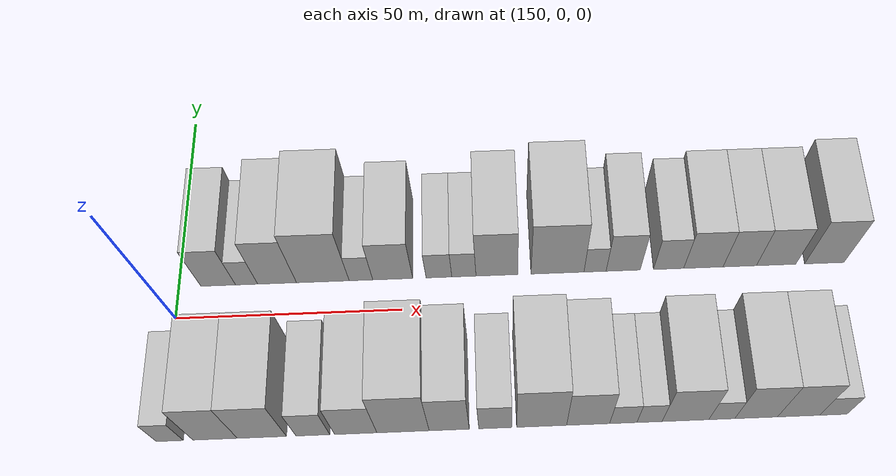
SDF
<sdf version="1.6">
 <world name="default">
  <model name="building_17">
   <static>1</static>
   <pose>158.8195 17.5000 0 0.000000 0.000000 1.570796</pose>
   <link name="link">
    <pose>0 0 9.00 0 0 0</pose>
    <collision name="collision"><geometry><box><size>20.0000 7.7421 18.0000</size></box></geometry></collision>
    <visual name="visual">
     <cast_shadows>0</cast_shadows>
     <geometry><box><size>20.0000 7.7421 18.0000</size></box></geometry>
     <material>
      <script>
       <uri>model://HANNAS_wall/materials/scripts</uri>
       <uri>model://HANNAS_wall/materials/textures</uri>
       <name>vrc/HANNAS_wall</name>
      </script>
     </material>
    </visual>
   </link>
  </model>
  <model name="building_18">
   <static>1</static>
   <pose>165.1507 17.5000 0 0.000000 0.000000 1.570796</pose>
   <link name="link">
    <pose>0 0 6.00 0 0 0</pose>
    <collision name="collision"><geometry><box><size>20.0000 4.9204 12.0000</size></box></geometry></collision>
    <visual name="visual">
     <cast_shadows>0</cast_shadows>
     <geometry><box><size>20.0000 4.9204 12.0000</size></box></geometry>
     <material>
      <script>
       <uri>model://HANNAS_wall/materials/scripts</uri>
       <uri>model://HANNAS_wall/materials/textures</uri>
       <name>vrc/HANNAS_wall</name>
      </script>
     </material>
    </visual>
   </link>
  </model>
  <model name="building_19">
   <static>1</static>
   <pose>171.9484 17.5000 0 0.000000 0.000000 1.570796</pose>
   <link name="link">
    <pose>0 0 10.50 0 0 0</pose>
    <collision name="collision"><geometry><box><size>20.0000 8.6751 21.0000</size></box></geometry></collision>
    <visual name="visual">
     <cast_shadows>0</cast_shadows>
     <geometry><box><size>20.0000 8.6751 21.0000</size></box></geometry>
     <material>
      <script>
       <uri>model://HANNAS_wall/materials/scripts</uri>
       <uri>model://HANNAS_wall/materials/textures</uri>
       <name>vrc/HANNAS_wall</name>
      </script>
     </material>
    </visual>
   </link>
  </model>
  <model name="building_20">
   <static>1</static>
   <pose>182.1808 17.5000 0 0.000000 0.000000 1.570796</pose>
   <link name="link">
    <pose>0 0 12.00 0 0 0</pose>
    <collision name="collision"><geometry><box><size>20.0000 11.7897 24.0000</size></box></geometry></collision>
    <visual name="visual">
     <cast_shadows>0</cast_shadows>
     <geometry><box><size>20.0000 11.7897 24.0000</size></box></geometry>
     <material>
      <script>
       <uri>model://HANNAS_wall/materials/scripts</uri>
       <uri>model://HANNAS_wall/materials/textures</uri>
       <name>vrc/HANNAS_wall</name>
      </script>
     </material>
    </visual>
   </link>
  </model>
  <model name="building_21">
   <static>1</static>
   <pose>190.7075 17.5000 0 0.000000 0.000000 1.570796</pose>
   <link name="link">
    <pose>0 0 6.00 0 0 0</pose>
    <collision name="collision"><geometry><box><size>20.0000 5.2637 12.0000</size></box></geometry></collision>
    <visual name="visual">
     <cast_shadows>0</cast_shadows>
     <geometry><box><size>20.0000 5.2637 12.0000</size></box></geometry>
     <material>
      <script>
       <uri>model://HANNAS_wall/materials/scripts</uri>
       <uri>model://HANNAS_wall/materials/textures</uri>
       <name>vrc/HANNAS_wall</name>
      </script>
     </material>
    </visual>
   </link>
  </model>
  <model name="building_22">
   <static>1</static>
   <pose>197.8259 17.5000 0 0.000000 0.000000 1.570796</pose>
   <link name="link">
    <pose>0 0 9.00 0 0 0</pose>
    <collision name="collision"><geometry><box><size>20.0000 8.9731 18.0000</size></box></geometry></collision>
    <visual name="visual">
     <cast_shadows>0</cast_shadows>
     <geometry><box><size>20.0000 8.9731 18.0000</size></box></geometry>
     <material>
      <script>
       <uri>model://HANNAS_wall/materials/scripts</uri>
       <uri>model://HANNAS_wall/materials/textures</uri>
       <name>vrc/HANNAS_wall</name>
      </script>
     </material>
    </visual>
   </link>
  </model>
  <model name="building_23">
   <static>1</static>
   <pose>208.1990 17.5000 0 0.000000 0.000000 1.570796</pose>
   <link name="link">
    <pose>0 0 6.00 0 0 0</pose>
    <collision name="collision"><geometry><box><size>20.0000 5.7732 12.0000</size></box></geometry></collision>
    <visual name="visual">
     <cast_shadows>0</cast_shadows>
     <geometry><box><size>20.0000 5.7732 12.0000</size></box></geometry>
     <material>
      <script>
       <uri>model://HANNAS_wall/materials/scripts</uri>
       <uri>model://HANNAS_wall/materials/textures</uri>
       <name>vrc/HANNAS_wall</name>
      </script>
     </material>
    </visual>
   </link>
  </model>
  <model name="building_24">
   <static>1</static>
   <pose>213.7987 17.5000 0 0.000000 0.000000 1.570796</pose>
   <link name="link">
    <pose>0 0 6.00 0 0 0</pose>
    <collision name="collision"><geometry><box><size>20.0000 5.4261 12.0000</size></box></geometry></collision>
    <visual name="visual">
     <cast_shadows>0</cast_shadows>
     <geometry><box><size>20.0000 5.4261 12.0000</size></box></geometry>
     <material>
      <script>
       <uri>model://HANNAS_wall/materials/scripts</uri>
       <uri>model://HANNAS_wall/materials/textures</uri>
       <name>vrc/HANNAS_wall</name>
      </script>
     </material>
    </visual>
   </link>
  </model>
  <model name="building_25">
   <static>1</static>
   <pose>221.1981 17.5000 0 0.000000 0.000000 1.570796</pose>
   <link name="link">
    <pose>0 0 10.50 0 0 0</pose>
    <collision name="collision"><geometry><box><size>20.0000 9.3727 21.0000</size></box></geometry></collision>
    <visual name="visual">
     <cast_shadows>0</cast_shadows>
     <geometry><box><size>20.0000 9.3727 21.0000</size></box></geometry>
     <material>
      <script>
       <uri>model://HANNAS_wall/materials/scripts</uri>
       <uri>model://HANNAS_wall/materials/textures</uri>
       <name>vrc/HANNAS_wall</name>
      </script>
     </material>
    </visual>
   </link>
  </model>
  <model name="building_26">
   <static>1</static>
   <pose>234.8552 17.5000 0 0.000000 0.000000 1.570796</pose>
   <link name="link">
    <pose>0 0 12.00 0 0 0</pose>
    <collision name="collision"><geometry><box><size>20.0000 11.9416 24.0000</size></box></geometry></collision>
    <visual name="visual">
     <cast_shadows>0</cast_shadows>
     <geometry><box><size>20.0000 11.9416 24.0000</size></box></geometry>
     <material>
      <script>
       <uri>model://HANNAS_wall/materials/scripts</uri>
       <uri>model://HANNAS_wall/materials/textures</uri>
       <name>vrc/HANNAS_wall</name>
      </script>
     </material>
    </visual>
   </link>
  </model>
  <model name="building_27">
   <static>1</static>
   <pose>243.3277 17.5000 0 0.000000 0.000000 1.570796</pose>
   <link name="link">
    <pose>0 0 6.00 0 0 0</pose>
    <collision name="collision"><geometry><box><size>20.0000 5.0033 12.0000</size></box></geometry></collision>
    <visual name="visual">
     <cast_shadows>0</cast_shadows>
     <geometry><box><size>20.0000 5.0033 12.0000</size></box></geometry>
     <material>
      <script>
       <uri>model://HANNAS_wall/materials/scripts</uri>
       <uri>model://HANNAS_wall/materials/textures</uri>
       <name>vrc/HANNAS_wall</name>
      </script>
     </material>
    </visual>
   </link>
  </model>
  <model name="building_28">
   <static>1</static>
   <pose>249.6791 17.5000 0 0.000000 0.000000 1.570796</pose>
   <link name="link">
    <pose>0 0 9.00 0 0 0</pose>
    <collision name="collision"><geometry><box><size>20.0000 7.6994 18.0000</size></box></geometry></collision>
    <visual name="visual">
     <cast_shadows>0</cast_shadows>
     <geometry><box><size>20.0000 7.6994 18.0000</size></box></geometry>
     <material>
      <script>
       <uri>model://HANNAS_wall/materials/scripts</uri>
       <uri>model://HANNAS_wall/materials/textures</uri>
       <name>vrc/HANNAS_wall</name>
      </script>
     </material>
    </visual>
   </link>
  </model>
  <model name="building_29">
   <static>1</static>
   <pose>259.9456 17.5000 0 0.000000 0.000000 1.570796</pose>
   <link name="link">
    <pose>0 0 7.50 0 0 0</pose>
    <collision name="collision"><geometry><box><size>20.0000 6.8336 15.0000</size></box></geometry></collision>
    <visual name="visual">
     <cast_shadows>0</cast_shadows>
     <geometry><box><size>20.0000 6.8336 15.0000</size></box></geometry>
     <material>
      <script>
       <uri>model://HANNAS_wall/materials/scripts</uri>
       <uri>model://HANNAS_wall/materials/textures</uri>
       <name>vrc/HANNAS_wall</name>
      </script>
     </material>
    </visual>
   </link>
  </model>
  <model name="building_30">
   <static>1</static>
   <pose>267.8288 17.5000 0 0.000000 0.000000 1.570796</pose>
   <link name="link">
    <pose>0 0 9.00 0 0 0</pose>
    <collision name="collision"><geometry><box><size>20.0000 8.9329 18.0000</size></box></geometry></collision>
    <visual name="visual">
     <cast_shadows>0</cast_shadows>
     <geometry><box><size>20.0000 8.9329 18.0000</size></box></geometry>
     <material>
      <script>
       <uri>model://HANNAS_wall/materials/scripts</uri>
       <uri>model://HANNAS_wall/materials/textures</uri>
       <name>vrc/HANNAS_wall</name>
      </script>
     </material>
    </visual>
   </link>
  </model>
  <model name="building_31">
   <static>1</static>
   <pose>276.0815 17.5000 0 0.000000 0.000000 1.570796</pose>
   <link name="link">
    <pose>0 0 9.00 0 0 0</pose>
    <collision name="collision"><geometry><box><size>20.0000 7.5723 18.0000</size></box></geometry></collision>
    <visual name="visual">
     <cast_shadows>0</cast_shadows>
     <geometry><box><size>20.0000 7.5723 18.0000</size></box></geometry>
     <material>
      <script>
       <uri>model://HANNAS_wall/materials/scripts</uri>
       <uri>model://HANNAS_wall/materials/textures</uri>
       <name>vrc/HANNAS_wall</name>
      </script>
     </material>
    </visual>
   </link>
  </model>
  <model name="building_32">
   <static>1</static>
   <pose>284.3451 17.5000 0 0.000000 0.000000 1.570796</pose>
   <link name="link">
    <pose>0 0 9.00 0 0 0</pose>
    <collision name="collision"><geometry><box><size>20.0000 8.9550 18.0000</size></box></geometry></collision>
    <visual name="visual">
     <cast_shadows>0</cast_shadows>
     <geometry><box><size>20.0000 8.9550 18.0000</size></box></geometry>
     <material>
      <script>
       <uri>model://HANNAS_wall/materials/scripts</uri>
       <uri>model://HANNAS_wall/materials/textures</uri>
       <name>vrc/HANNAS_wall</name>
      </script>
     </material>
    </visual>
   </link>
  </model>
  <model name="building_33">
   <static>1</static>
   <pose>295.3060 17.5000 0 0.000000 0.000000 1.570796</pose>
   <link name="link">
    <pose>0 0 10.50 0 0 0</pose>
    <collision name="collision"><geometry><box><size>20.0000 8.9669 21.0000</size></box></geometry></collision>
    <visual name="visual">
     <cast_shadows>0</cast_shadows>
     <geometry><box><size>20.0000 8.9669 21.0000</size></box></geometry>
     <material>
      <script>
       <uri>model://HANNAS_wall/materials/scripts</uri>
       <uri>model://HANNAS_wall/materials/textures</uri>
       <name>vrc/HANNAS_wall</name>
      </script>
     </material>
    </visual>
   </link>
  </model>
  <model name="building_49">
   <static>1</static>
   <pose>151.4752 -17.5000 0 0.000000 0.000000 1.570796</pose>
   <link name="link">
    <pose>0 0 6.00 0 0 0</pose>
    <collision name="collision"><geometry><box><size>20.0000 5.6094 12.0000</size></box></geometry></collision>
    <visual name="visual">
     <cast_shadows>0</cast_shadows>
     <geometry><box><size>20.0000 5.6094 12.0000</size></box></geometry>
     <material>
      <script>
       <uri>model://HANNAS_wall/materials/scripts</uri>
       <uri>model://HANNAS_wall/materials/textures</uri>
       <name>vrc/HANNAS_wall</name>
      </script>
     </material>
    </visual>
   </link>
  </model>
  <model name="building_50">
   <static>1</static>
   <pose>160.9302 -17.5000 0 0.000000 0.000000 1.570796</pose>
   <link name="link">
    <pose>0 0 10.50 0 0 0</pose>
    <collision name="collision"><geometry><box><size>20.0000 9.3006 21.0000</size></box></geometry></collision>
    <visual name="visual">
     <cast_shadows>0</cast_shadows>
     <geometry><box><size>20.0000 9.3006 21.0000</size></box></geometry>
     <material>
      <script>
       <uri>model://HANNAS_wall/materials/scripts</uri>
       <uri>model://HANNAS_wall/materials/textures</uri>
       <name>vrc/HANNAS_wall</name>
      </script>
     </material>
    </visual>
   </link>
  </model>
  <model name="building_51">
   <static>1</static>
   <pose>170.7071 -17.5000 0 0.000000 0.000000 1.570796</pose>
   <link name="link">
    <pose>0 0 10.50 0 0 0</pose>
    <collision name="collision"><geometry><box><size>20.0000 10.2532 21.0000</size></box></geometry></collision>
    <visual name="visual">
     <cast_shadows>0</cast_shadows>
     <geometry><box><size>20.0000 10.2532 21.0000</size></box></geometry>
     <material>
      <script>
       <uri>model://HANNAS_wall/materials/scripts</uri>
       <uri>model://HANNAS_wall/materials/textures</uri>
       <name>vrc/HANNAS_wall</name>
      </script>
     </material>
    </visual>
   </link>
  </model>
  <model name="building_52">
   <static>1</static>
   <pose>181.3683 -17.5000 0 0.000000 0.000000 1.570796</pose>
   <link name="link">
    <pose>0 0 7.50 0 0 0</pose>
    <collision name="collision"><geometry><box><size>20.0000 7.0693 15.0000</size></box></geometry></collision>
    <visual name="visual">
     <cast_shadows>0</cast_shadows>
     <geometry><box><size>20.0000 7.0693 15.0000</size></box></geometry>
     <material>
      <script>
       <uri>model://HANNAS_wall/materials/scripts</uri>
       <uri>model://HANNAS_wall/materials/textures</uri>
       <name>vrc/HANNAS_wall</name>
      </script>
     </material>
    </visual>
   </link>
  </model>
  <model name="building_53">
   <static>1</static>
   <pose>190.3363 -17.5000 0 0.000000 0.000000 1.570796</pose>
   <link name="link">
    <pose>0 0 9.00 0 0 0</pose>
    <collision name="collision"><geometry><box><size>20.0000 8.8667 18.0000</size></box></geometry></collision>
    <visual name="visual">
     <cast_shadows>0</cast_shadows>
     <geometry><box><size>20.0000 8.8667 18.0000</size></box></geometry>
     <material>
      <script>
       <uri>model://HANNAS_wall/materials/scripts</uri>
       <uri>model://HANNAS_wall/materials/textures</uri>
       <name>vrc/HANNAS_wall</name>
      </script>
     </material>
    </visual>
   </link>
  </model>
  <model name="building_54">
   <static>1</static>
   <pose>200.2570 -17.5000 0 0.000000 0.000000 1.570796</pose>
   <link name="link">
    <pose>0 0 12.00 0 0 0</pose>
    <collision name="collision"><geometry><box><size>20.0000 10.9747 24.0000</size></box></geometry></collision>
    <visual name="visual">
     <cast_shadows>0</cast_shadows>
     <geometry><box><size>20.0000 10.9747 24.0000</size></box></geometry>
     <material>
      <script>
       <uri>model://HANNAS_wall/materials/scripts</uri>
       <uri>model://HANNAS_wall/materials/textures</uri>
       <name>vrc/HANNAS_wall</name>
      </script>
     </material>
    </visual>
   </link>
  </model>
  <model name="building_55">
   <static>1</static>
   <pose>209.9510 -17.5000 0 0.000000 0.000000 1.570796</pose>
   <link name="link">
    <pose>0 0 10.50 0 0 0</pose>
    <collision name="collision"><geometry><box><size>20.0000 8.4133 21.0000</size></box></geometry></collision>
    <visual name="visual">
     <cast_shadows>0</cast_shadows>
     <geometry><box><size>20.0000 8.4133 21.0000</size></box></geometry>
     <material>
      <script>
       <uri>model://HANNAS_wall/materials/scripts</uri>
       <uri>model://HANNAS_wall/materials/textures</uri>
       <name>vrc/HANNAS_wall</name>
      </script>
     </material>
    </visual>
   </link>
  </model>
  <model name="building_56">
   <static>1</static>
   <pose>219.6437 -17.5000 0 0.000000 0.000000 1.570796</pose>
   <link name="link">
    <pose>0 0 7.50 0 0 0</pose>
    <collision name="collision"><geometry><box><size>20.0000 6.9720 15.0000</size></box></geometry></collision>
    <visual name="visual">
     <cast_shadows>0</cast_shadows>
     <geometry><box><size>20.0000 6.9720 15.0000</size></box></geometry>
     <material>
      <script>
       <uri>model://HANNAS_wall/materials/scripts</uri>
       <uri>model://HANNAS_wall/materials/textures</uri>
       <name>vrc/HANNAS_wall</name>
      </script>
     </material>
    </visual>
   </link>
  </model>
  <model name="building_57">
   <static>1</static>
   <pose>229.3934 -17.5000 0 0.000000 0.000000 1.570796</pose>
   <link name="link">
    <pose>0 0 12.00 0 0 0</pose>
    <collision name="collision"><geometry><box><size>20.0000 10.5274 24.0000</size></box></geometry></collision>
    <visual name="visual">
     <cast_shadows>0</cast_shadows>
     <geometry><box><size>20.0000 10.5274 24.0000</size></box></geometry>
     <material>
      <script>
       <uri>model://HANNAS_wall/materials/scripts</uri>
       <uri>model://HANNAS_wall/materials/textures</uri>
       <name>vrc/HANNAS_wall</name>
      </script>
     </material>
    </visual>
   </link>
  </model>
  <model name="building_58">
   <static>1</static>
   <pose>239.2051 -17.5000 0 0.000000 0.000000 1.570796</pose>
   <link name="link">
    <pose>0 0 10.50 0 0 0</pose>
    <collision name="collision"><geometry><box><size>20.0000 9.0959 21.0000</size></box></geometry></collision>
    <visual name="visual">
     <cast_shadows>0</cast_shadows>
     <geometry><box><size>20.0000 9.0959 21.0000</size></box></geometry>
     <material>
      <script>
       <uri>model://HANNAS_wall/materials/scripts</uri>
       <uri>model://HANNAS_wall/materials/textures</uri>
       <name>vrc/HANNAS_wall</name>
      </script>
     </material>
    </visual>
   </link>
  </model>
  <model name="building_59">
   <static>1</static>
   <pose>246.6324 -17.5000 0 0.000000 0.000000 1.570796</pose>
   <link name="link">
    <pose>0 0 6.00 0 0 0</pose>
    <collision name="collision"><geometry><box><size>20.0000 5.7586 12.0000</size></box></geometry></collision>
    <visual name="visual">
     <cast_shadows>0</cast_shadows>
     <geometry><box><size>20.0000 5.7586 12.0000</size></box></geometry>
     <material>
      <script>
       <uri>model://HANNAS_wall/materials/scripts</uri>
       <uri>model://HANNAS_wall/materials/textures</uri>
       <name>vrc/HANNAS_wall</name>
      </script>
     </material>
    </visual>
   </link>
  </model>
  <model name="building_60">
   <static>1</static>
   <pose>252.1695 -17.5000 0 0.000000 0.000000 1.570796</pose>
   <link name="link">
    <pose>0 0 6.00 0 0 0</pose>
    <collision name="collision"><geometry><box><size>20.0000 5.3156 12.0000</size></box></geometry></collision>
    <visual name="visual">
     <cast_shadows>0</cast_shadows>
     <geometry><box><size>20.0000 5.3156 12.0000</size></box></geometry>
     <material>
      <script>
       <uri>model://HANNAS_wall/materials/scripts</uri>
       <uri>model://HANNAS_wall/materials/textures</uri>
       <name>vrc/HANNAS_wall</name>
      </script>
     </material>
    </visual>
   </link>
  </model>
  <model name="building_61">
   <static>1</static>
   <pose>259.7854 -17.5000 0 0.000000 0.000000 1.570796</pose>
   <link name="link">
    <pose>0 0 10.50 0 0 0</pose>
    <collision name="collision"><geometry><box><size>20.0000 9.9163 21.0000</size></box></geometry></collision>
    <visual name="visual">
     <cast_shadows>0</cast_shadows>
     <geometry><box><size>20.0000 9.9163 21.0000</size></box></geometry>
     <material>
      <script>
       <uri>model://HANNAS_wall/materials/scripts</uri>
       <uri>model://HANNAS_wall/materials/textures</uri>
       <name>vrc/HANNAS_wall</name>
      </script>
     </material>
    </visual>
   </link>
  </model>
  <model name="building_62">
   <static>1</static>
   <pose>267.5039 -17.5000 0 0.000000 0.000000 1.570796</pose>
   <link name="link">
    <pose>0 0 6.00 0 0 0</pose>
    <collision name="collision"><geometry><box><size>20.0000 5.5207 12.0000</size></box></geometry></collision>
    <visual name="visual">
     <cast_shadows>0</cast_shadows>
     <geometry><box><size>20.0000 5.5207 12.0000</size></box></geometry>
     <material>
      <script>
       <uri>model://HANNAS_wall/materials/scripts</uri>
       <uri>model://HANNAS_wall/materials/textures</uri>
       <name>vrc/HANNAS_wall</name>
      </script>
     </material>
    </visual>
   </link>
  </model>
  <model name="building_63">
   <static>1</static>
   <pose>274.8048 -17.5000 0 0.000000 0.000000 1.570796</pose>
   <link name="link">
    <pose>0 0 10.50 0 0 0</pose>
    <collision name="collision"><geometry><box><size>20.0000 9.0812 21.0000</size></box></geometry></collision>
    <visual name="visual">
     <cast_shadows>0</cast_shadows>
     <geometry><box><size>20.0000 9.0812 21.0000</size></box></geometry>
     <material>
      <script>
       <uri>model://HANNAS_wall/materials/scripts</uri>
       <uri>model://HANNAS_wall/materials/textures</uri>
       <name>vrc/HANNAS_wall</name>
      </script>
     </material>
    </visual>
   </link>
  </model>
  <model name="building_64">
   <static>1</static>
   <pose>283.8196 -17.5000 0 0.000000 0.000000 1.570796</pose>
   <link name="link">
    <pose>0 0 10.50 0 0 0</pose>
    <collision name="collision"><geometry><box><size>20.0000 8.9483 21.0000</size></box></geometry></collision>
    <visual name="visual">
     <cast_shadows>0</cast_shadows>
     <geometry><box><size>20.0000 8.9483 21.0000</size></box></geometry>
     <material>
      <script>
       <uri>model://HANNAS_wall/materials/scripts</uri>
       <uri>model://HANNAS_wall/materials/textures</uri>
       <name>vrc/HANNAS_wall</name>
      </script>
     </material>
    </visual>
   </link>
  </model>
  <model name="building_65">
   <static>1</static>
   <pose>291.2300 -17.5000 0 0.000000 0.000000 1.570796</pose>
   <link name="link">
    <pose>0 0 6.00 0 0 0</pose>
    <collision name="collision"><geometry><box><size>20.0000 5.8726 12.0000</size></box></geometry></collision>
    <visual name="visual">
     <cast_shadows>0</cast_shadows>
     <geometry><box><size>20.0000 5.8726 12.0000</size></box></geometry>
     <material>
      <script>
       <uri>model://HANNAS_wall/materials/scripts</uri>
       <uri>model://HANNAS_wall/materials/textures</uri>
       <name>vrc/HANNAS_wall</name>
      </script>
     </material>
    </visual>
   </link>
  </model>
 </world>
</sdf>
